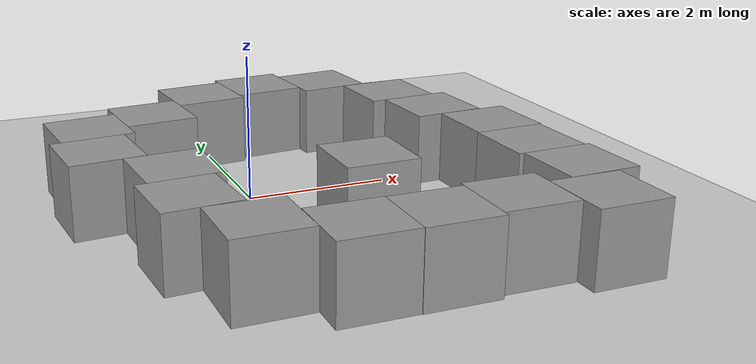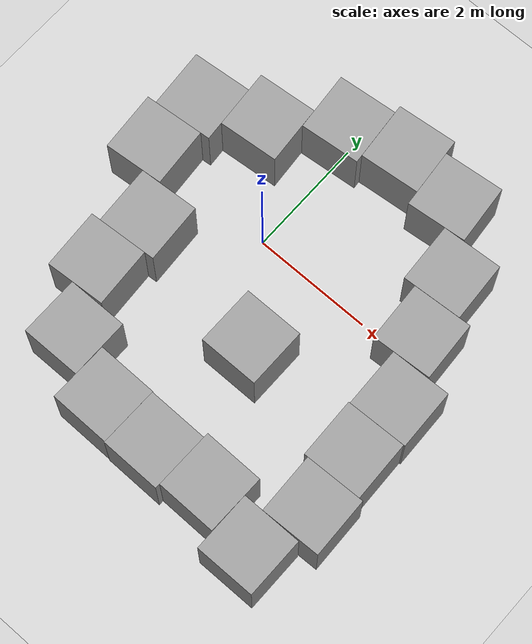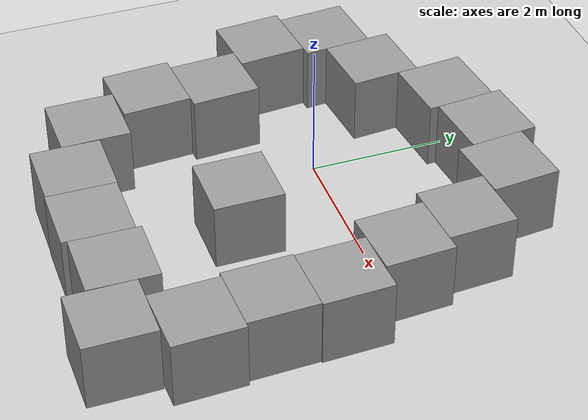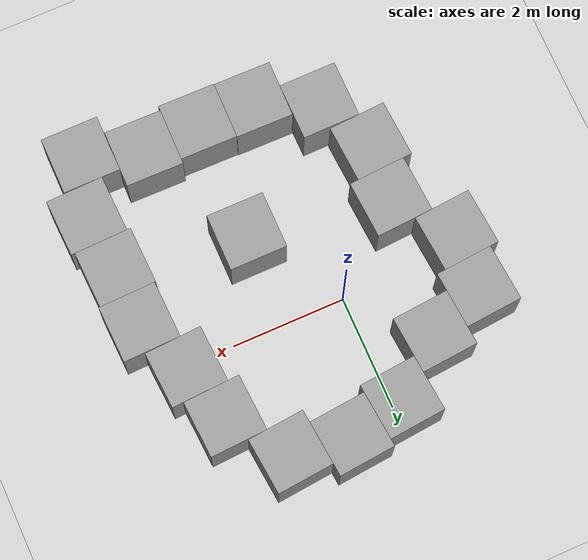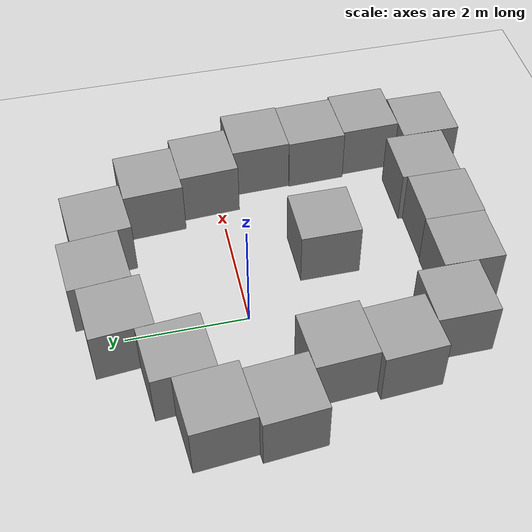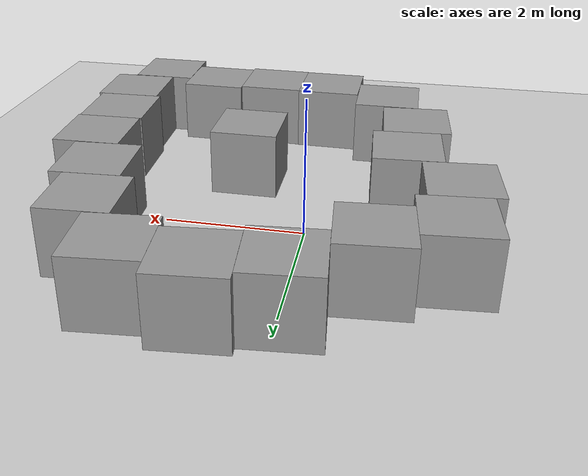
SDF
<sdf version="1.7">
 <world name="default">
  <light name="sun" type="directional">
   <pose>0 0 10 0 -0 0</pose>
   <diffuse>0.8 0.8 0.8 1</diffuse>
   <specular>0.2 0.2 0.2 1</specular>
   <attenuation>
    <range>1000</range>
    <constant>0.9</constant>
    <linear>0.01</linear>
    <quadratic>0.001</quadratic>
   </attenuation>
   <direction>-0.5 0.1 -0.9</direction>
   <spot><inner_angle>0</inner_angle><outer_angle>0</outer_angle><falloff>0</falloff></spot>
  </light>
  <model name="ground_plane">
   <static>1</static>
   <link name="link">
    <collision name="collision">
     <geometry><plane><normal>0 0 1</normal><size>100 100</size></plane></geometry>
     <surface><friction><ode><mu>100</mu><mu2>50</mu2></ode></friction></surface>
    </collision>
    <visual name="visual">
     <cast_shadows>0</cast_shadows>
     <geometry><plane><normal>0 0 1</normal><size>100 100</size></plane></geometry>
     <material>
      <script><uri>file://media/materials/scripts/gazebo.material</uri><name>Gazebo/Grey</name></script>
     </material>
    </visual>
   </link>
  </model>
  <gravity>0 0 -9.8</gravity>
  <magnetic_field>6e-06 2.3e-05 -4.2e-05</magnetic_field>
  <atmosphere type="adiabatic"/>
  <physics type="ode">
   <max_step_size>0.001</max_step_size>
   <real_time_factor>1</real_time_factor>
   <real_time_update_rate>1000</real_time_update_rate>
  </physics>
  <scene><ambient>0.4 0.4 0.4 1</ambient><background>0.7 0.7 0.7 1</background><shadows>1</shadows></scene>
  <audio><device>default</device></audio>
  <spherical_coordinates>
   <surface_model>EARTH_WGS84</surface_model>
   <latitude_deg>0</latitude_deg>
   <longitude_deg>0</longitude_deg>
   <elevation>0</elevation>
   <heading_deg>0</heading_deg>
  </spherical_coordinates>
  <model name="unit_box">
   <pose>2.89315 0.204824 0.499995 1e-05 -0 0.0559</pose>
   <link name="link">
    <inertial>
     <mass>1</mass>
     <inertia>
      <ixx>0.166667</ixx>
      <ixy>0</ixy>
      <ixz>0</ixz>
      <iyy>0.166667</iyy>
      <iyz>0</iyz>
      <izz>0.166667</izz>
     </inertia>
    </inertial>
    <collision name="collision"><geometry><box><size>1 1 1</size></box></geometry></collision>
    <visual name="visual">
     <geometry><box><size>1 1 1</size></box></geometry>
     <material>
      <script><name>Gazebo/Grey</name><uri>file://media/materials/scripts/gazebo.material</uri></script>
     </material>
    </visual>
   </link>
  </model>
  <model name="unit_box_0">
   <pose>2.64098 1.19337 0.499995 -0 -1e-05 0.056568</pose>
   <link name="link">
    <inertial>
     <mass>1</mass>
     <inertia>
      <ixx>0.166667</ixx>
      <ixy>0</ixy>
      <ixz>0</ixz>
      <iyy>0.166667</iyy>
      <iyz>0</iyz>
      <izz>0.166667</izz>
     </inertia>
    </inertial>
    <collision name="collision"><geometry><box><size>1 1 1</size></box></geometry></collision>
    <visual name="visual">
     <geometry><box><size>1 1 1</size></box></geometry>
     <material>
      <script><name>Gazebo/Grey</name><uri>file://media/materials/scripts/gazebo.material</uri></script>
     </material>
    </visual>
   </link>
  </model>
  <model name="unit_box_1">
   <pose>1.91234 2.1477 0.5 0 -0 0.093456</pose>
   <link name="link">
    <inertial>
     <mass>1</mass>
     <inertia>
      <ixx>0.166667</ixx>
      <ixy>0</ixy>
      <ixz>0</ixz>
      <iyy>0.166667</iyy>
      <iyz>0</iyz>
      <izz>0.166667</izz>
     </inertia>
    </inertial>
    <collision name="collision"><geometry><box><size>1 1 1</size></box></geometry></collision>
    <visual name="visual">
     <geometry><box><size>1 1 1</size></box></geometry>
     <material>
      <script><name>Gazebo/Grey</name><uri>file://media/materials/scripts/gazebo.material</uri></script>
     </material>
    </visual>
   </link>
  </model>
  <model name="unit_box_2">
   <pose>0.895138 2.28246 0.499995 -1e-05 -0 0.09301</pose>
   <link name="link">
    <inertial>
     <mass>1</mass>
     <inertia>
      <ixx>0.166667</ixx>
      <ixy>0</ixy>
      <ixz>0</ixz>
      <iyy>0.166667</iyy>
      <iyz>0</iyz>
      <izz>0.166667</izz>
     </inertia>
    </inertial>
    <collision name="collision"><geometry><box><size>1 1 1</size></box></geometry></collision>
    <visual name="visual">
     <geometry><box><size>1 1 1</size></box></geometry>
     <material>
      <script><name>Gazebo/Grey</name><uri>file://media/materials/scripts/gazebo.material</uri></script>
     </material>
    </visual>
   </link>
  </model>
  <model name="unit_box_3">
   <pose>-0.089511 2.06424 0.5 0 -0 0.091689</pose>
   <link name="link">
    <inertial>
     <mass>1</mass>
     <inertia>
      <ixx>0.166667</ixx>
      <ixy>0</ixy>
      <ixz>0</ixz>
      <iyy>0.166667</iyy>
      <iyz>0</iyz>
      <izz>0.166667</izz>
     </inertia>
    </inertial>
    <collision name="collision"><geometry><box><size>1 1 1</size></box></geometry></collision>
    <visual name="visual">
     <geometry><box><size>1 1 1</size></box></geometry>
     <material>
      <script><name>Gazebo/Grey</name><uri>file://media/materials/scripts/gazebo.material</uri></script>
     </material>
    </visual>
   </link>
  </model>
  <model name="unit_box_4">
   <pose>-1.02681 1.28597 0.499936 -1e-05 -0 0.082419</pose>
   <link name="link">
    <inertial>
     <mass>1</mass>
     <inertia>
      <ixx>0.166667</ixx>
      <ixy>0</ixy>
      <ixz>0</ixz>
      <iyy>0.166667</iyy>
      <iyz>0</iyz>
      <izz>0.166667</izz>
     </inertia>
    </inertial>
    <collision name="collision"><geometry><box><size>1 1 1</size></box></geometry></collision>
    <visual name="visual">
     <geometry><box><size>1 1 1</size></box></geometry>
     <material>
      <script><name>Gazebo/Grey</name><uri>file://media/materials/scripts/gazebo.material</uri></script>
     </material>
    </visual>
   </link>
  </model>
  <model name="unit_box_5">
   <pose>-1.99774 0.892869 0.499995 0 1e-05 0.082421</pose>
   <link name="link">
    <inertial>
     <mass>1</mass>
     <inertia>
      <ixx>0.166667</ixx>
      <ixy>0</ixy>
      <ixz>0</ixz>
      <iyy>0.166667</iyy>
      <iyz>0</iyz>
      <izz>0.166667</izz>
     </inertia>
    </inertial>
    <collision name="collision"><geometry><box><size>1 1 1</size></box></geometry></collision>
    <visual name="visual">
     <geometry><box><size>1 1 1</size></box></geometry>
     <material>
      <script><name>Gazebo/Grey</name><uri>file://media/materials/scripts/gazebo.material</uri></script>
     </material>
    </visual>
   </link>
  </model>
  <model name="unit_box_6">
   <pose>-2.06608 -0.116184 0.5 0 -0 0.082421</pose>
   <link name="link">
    <inertial>
     <mass>1</mass>
     <inertia>
      <ixx>0.166667</ixx>
      <ixy>0</ixy>
      <ixz>0</ixz>
      <iyy>0.166667</iyy>
      <iyz>0</iyz>
      <izz>0.166667</izz>
     </inertia>
    </inertial>
    <collision name="collision"><geometry><box><size>1 1 1</size></box></geometry></collision>
    <visual name="visual">
     <geometry><box><size>1 1 1</size></box></geometry>
     <material>
      <script><name>Gazebo/Grey</name><uri>file://media/materials/scripts/gazebo.material</uri></script>
     </material>
    </visual>
   </link>
  </model>
  <model name="unit_box_7">
   <pose>-1.31615 -1.06749 0.499995 -0 -1e-05 0.062607</pose>
   <link name="link">
    <inertial>
     <mass>1</mass>
     <inertia>
      <ixx>0.166667</ixx>
      <ixy>0</ixy>
      <ixz>0</ixz>
      <iyy>0.166667</iyy>
      <iyz>0</iyz>
      <izz>0.166667</izz>
     </inertia>
    </inertial>
    <collision name="collision"><geometry><box><size>1 1 1</size></box></geometry></collision>
    <visual name="visual">
     <geometry><box><size>1 1 1</size></box></geometry>
     <material>
      <script><name>Gazebo/Grey</name><uri>file://media/materials/scripts/gazebo.material</uri></script>
     </material>
    </visual>
   </link>
  </model>
  <model name="unit_box_8">
   <pose>1.09419 -1.48762 0.499995 -1e-05 -0 -0</pose>
   <link name="link">
    <inertial>
     <mass>1</mass>
     <inertia>
      <ixx>0.166667</ixx>
      <ixy>0</ixy>
      <ixz>0</ixz>
      <iyy>0.166667</iyy>
      <iyz>0</iyz>
      <izz>0.166667</izz>
     </inertia>
    </inertial>
    <collision name="collision"><geometry><box><size>1 1 1</size></box></geometry></collision>
    <visual name="visual">
     <geometry><box><size>1 1 1</size></box></geometry>
     <material>
      <script><name>Gazebo/Grey</name><uri>file://media/materials/scripts/gazebo.material</uri></script>
     </material>
    </visual>
   </link>
  </model>
  <model name="unit_box_9">
   <pose>3.29858 -0.787188 0.5 0 -0 0.029329</pose>
   <link name="link">
    <inertial>
     <mass>1</mass>
     <inertia>
      <ixx>0.166667</ixx>
      <ixy>0</ixy>
      <ixz>0</ixz>
      <iyy>0.166667</iyy>
      <iyz>0</iyz>
      <izz>0.166667</izz>
     </inertia>
    </inertial>
    <collision name="collision"><geometry><box><size>1 1 1</size></box></geometry></collision>
    <visual name="visual">
     <geometry><box><size>1 1 1</size></box></geometry>
     <material>
      <script><name>Gazebo/Grey</name><uri>file://media/materials/scripts/gazebo.material</uri></script>
     </material>
    </visual>
   </link>
  </model>
  <model name="unit_box_10">
   <pose>3.30517 -1.78746 0.49999 0 -0 0.029264</pose>
   <link name="link">
    <inertial>
     <mass>1</mass>
     <inertia>
      <ixx>0.166667</ixx>
      <ixy>0</ixy>
      <ixz>0</ixz>
      <iyy>0.166667</iyy>
      <iyz>0</iyz>
      <izz>0.166667</izz>
     </inertia>
    </inertial>
    <collision name="collision"><geometry><box><size>1 1 1</size></box></geometry></collision>
    <visual name="visual">
     <geometry><box><size>1 1 1</size></box></geometry>
     <material>
      <script><name>Gazebo/Grey</name><uri>file://media/materials/scripts/gazebo.material</uri></script>
     </material>
    </visual>
   </link>
  </model>
  <model name="unit_box_11">
   <pose>-1.40778 -2.07521 0.499995 -0 -1e-05 0.062601</pose>
   <link name="link">
    <inertial>
     <mass>1</mass>
     <inertia>
      <ixx>0.166667</ixx>
      <ixy>0</ixy>
      <ixz>0</ixz>
      <iyy>0.166667</iyy>
      <iyz>0</iyz>
      <izz>0.166667</izz>
     </inertia>
    </inertial>
    <collision name="collision"><geometry><box><size>1 1 1</size></box></geometry></collision>
    <visual name="visual">
     <geometry><box><size>1 1 1</size></box></geometry>
     <material>
      <script><name>Gazebo/Grey</name><uri>file://media/materials/scripts/gazebo.material</uri></script>
     </material>
    </visual>
   </link>
  </model>
  <model name="unit_box_12">
   <pose>-0.918805 -3.07446 0.5 0 -0 0.005174</pose>
   <link name="link">
    <inertial>
     <mass>1</mass>
     <inertia>
      <ixx>0.166667</ixx>
      <ixy>0</ixy>
      <ixz>0</ixz>
      <iyy>0.166667</iyy>
      <iyz>0</iyz>
      <izz>0.166667</izz>
     </inertia>
    </inertial>
    <collision name="collision"><geometry><box><size>1 1 1</size></box></geometry></collision>
    <visual name="visual">
     <geometry><box><size>1 1 1</size></box></geometry>
     <material>
      <script><name>Gazebo/Grey</name><uri>file://media/materials/scripts/gazebo.material</uri></script>
     </material>
    </visual>
   </link>
  </model>
  <model name="unit_box_13">
   <pose>0.084381 -3.52855 0.499995 -0 1e-05 -0.011432</pose>
   <link name="link">
    <inertial>
     <mass>1</mass>
     <inertia>
      <ixx>0.166667</ixx>
      <ixy>0</ixy>
      <ixz>0</ixz>
      <iyy>0.166667</iyy>
      <iyz>0</iyz>
      <izz>0.166667</izz>
     </inertia>
    </inertial>
    <collision name="collision"><geometry><box><size>1 1 1</size></box></geometry></collision>
    <visual name="visual">
     <geometry><box><size>1 1 1</size></box></geometry>
     <material>
      <script><name>Gazebo/Grey</name><uri>file://media/materials/scripts/gazebo.material</uri></script>
     </material>
    </visual>
   </link>
  </model>
  <model name="unit_box_14">
   <pose>1.08441 -3.55053 0.499879 -7e-06 -0 -0.011876</pose>
   <link name="link">
    <inertial>
     <mass>1</mass>
     <inertia>
      <ixx>0.166667</ixx>
      <ixy>0</ixy>
      <ixz>0</ixz>
      <iyy>0.166667</iyy>
      <iyz>0</iyz>
      <izz>0.166667</izz>
     </inertia>
    </inertial>
    <collision name="collision"><geometry><box><size>1 1 1</size></box></geometry></collision>
    <visual name="visual">
     <geometry><box><size>1 1 1</size></box></geometry>
     <material>
      <script><name>Gazebo/Grey</name><uri>file://media/materials/scripts/gazebo.material</uri></script>
     </material>
    </visual>
   </link>
  </model>
  <model name="unit_box_15">
   <pose>3.39829 -2.78545 0.5 0 -0 0.028888</pose>
   <link name="link">
    <inertial>
     <mass>1</mass>
     <inertia>
      <ixx>0.166667</ixx>
      <ixy>0</ixy>
      <ixz>0</ixz>
      <iyy>0.166667</iyy>
      <iyz>0</iyz>
      <izz>0.166667</izz>
     </inertia>
    </inertial>
    <collision name="collision"><geometry><box><size>1 1 1</size></box></geometry></collision>
    <visual name="visual">
     <geometry><box><size>1 1 1</size></box></geometry>
     <material>
      <script><name>Gazebo/Grey</name><uri>file://media/materials/scripts/gazebo.material</uri></script>
     </material>
    </visual>
   </link>
  </model>
  <model name="unit_box_16">
   <pose>2.08531 -3.48252 0.499995 1e-05 -0 -0.011855</pose>
   <link name="link">
    <inertial>
     <mass>1</mass>
     <inertia>
      <ixx>0.166667</ixx>
      <ixy>0</ixy>
      <ixz>0</ixz>
      <iyy>0.166667</iyy>
      <iyz>0</iyz>
      <izz>0.166667</izz>
     </inertia>
    </inertial>
    <collision name="collision"><geometry><box><size>1 1 1</size></box></geometry></collision>
    <visual name="visual">
     <geometry><box><size>1 1 1</size></box></geometry>
     <material>
      <script><name>Gazebo/Grey</name><uri>file://media/materials/scripts/gazebo.material</uri></script>
     </material>
    </visual>
   </link>
  </model>
  <model name="unit_box_17">
   <pose>3.08847 -3.79937 0.5 0 -0 0.001809</pose>
   <link name="link">
    <inertial>
     <mass>1</mass>
     <inertia>
      <ixx>0.166667</ixx>
      <ixy>0</ixy>
      <ixz>0</ixz>
      <iyy>0.166667</iyy>
      <iyz>0</iyz>
      <izz>0.166667</izz>
     </inertia>
    </inertial>
    <collision name="collision"><geometry><box><size>1 1 1</size></box></geometry></collision>
    <visual name="visual">
     <geometry><box><size>1 1 1</size></box></geometry>
     <material>
      <script><name>Gazebo/Grey</name><uri>file://media/materials/scripts/gazebo.material</uri></script>
     </material>
    </visual>
   </link>
  </model>
 </world>
</sdf>
